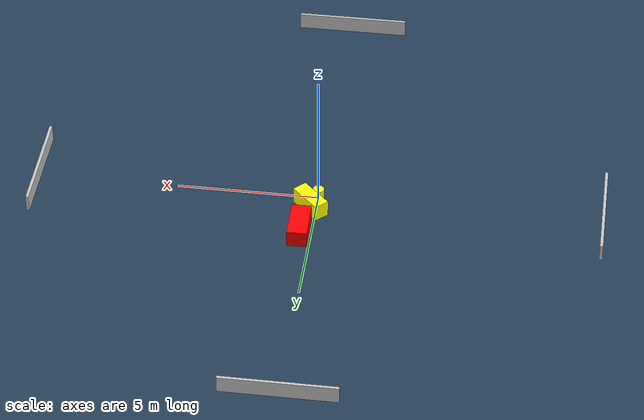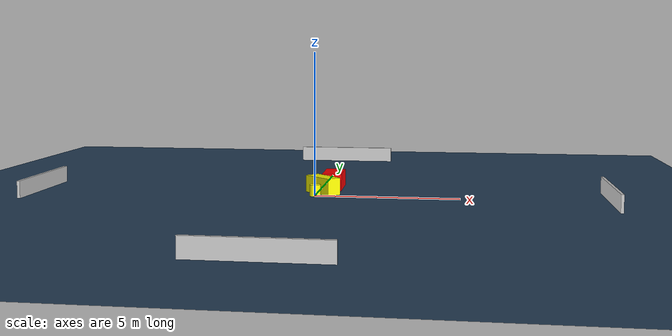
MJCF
<?xml version="1.0" ?>
<mujoco model="generated_environment">
  <option timestep="0.01" integrator="RK4" cone="elliptic"/>
  <default>
    <geom density="1"/>
  </default>
  <asset>
    <texture builtin="gradient" height="3072" name="skybox" rgb1="0.3 0.5 0.7" rgb2="0 0 0" type="skybox" width="512"/>
    <texture builtin="checker" height="300" name="groundplane" rgb1="0.2 0.3 0.4" rgb2="0.1 0.2 0.3" type="2d" width="300"/>
    <material name="groundplane" reflectance="0.2" texrepeat="5 5" texture="groundplane"/>
  </asset>
  <worldbody>
    <light dir="0 0 -1" directional="true" pos="0 0 1.5"/>
    <geom condim="3" friction="0.5 0.005 0.001" material="groundplane" name="floor" pos="0 0 0" size="0 0 0.05" type="plane"/>
    <body name="walls">
      <geom name="wall_1" condim="4" pos="-10.0 0.0 0.3" rgba="0.800000011920929 0.800000011920929 0.800000011920929 1.0" size="0.05 2.0 0.3" type="box"/>
      <geom name="wall_2" condim="4" pos="10.0 0.0 0.3" rgba="0.800000011920929 0.800000011920929 0.800000011920929 1.0" size="0.05 2.0 0.3" type="box"/>
      <geom name="wall_3" condim="4" pos="0.0 -10.0 0.3" rgba="0.800000011920929 0.800000011920929 0.800000011920929 1.0" size="2.0 0.05 0.3" type="box"/>
      <geom name="wall_4" condim="4" pos="0.0 10.0 0.3" rgba="0.800000011920929 0.800000011920929 0.800000011920929 1.0" size="2.0 0.05 0.3" type="box"/>
    </body>
    <body name="robot">
      <joint name="joint_x" type="slide" pos="0 0 0" axis="1 0 0"/>
      <joint name="joint_y" type="slide" pos="0 0 0" axis="0 1 0"/>
      <geom name="robot" type="cylinder" pos="0.0 0.0 0.2" size="0.2 0.2 0.0" mass="5.0" friction="1.0 0.005 0.0001" condim="4" rgba="1.0 1.0 0.0 1.0"/>
    </body>
    <body name="obstacle_1_movable">
      <geom name="obstacle_1_movable" condim="4" pos="0.19955145581726436 0.6055061332105073 0.3" euler="0 0 224.7062961567134" friction="0.0 0.005 0.001" rgba="1.0 1.0 0.0 1.0" size="0.2686514976365376 0.6429906934439716 0.3" type="box" mass="0.1"/>
      <joint type="free"/>
    </body>
    <body name="obstacle_2_static">
      <geom name="obstacle_2_static" condim="4" pos="0.4218581635284369 1.9264849482013808 0.3" euler="0 0 270.7940991739975" friction="0.0 0.005 0.001" rgba="1.0 0.0 0.0 1.0" size="0.7447926091276653 0.35156025573109895 0.3" type="box"/>
    </body>
  </worldbody>
  <actuator>
    <motor name="actuator_x" joint="joint_x" gear="1" ctrlrange="-1 1"/>
    <motor name="actuator_y" joint="joint_y" gear="1" ctrlrange="-1 1"/>
  </actuator>
</mujoco>
